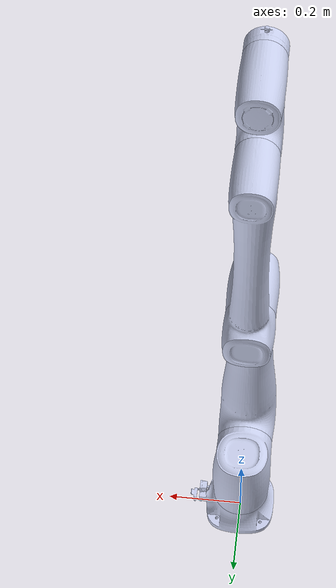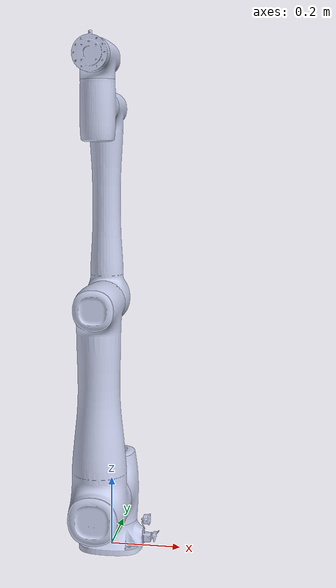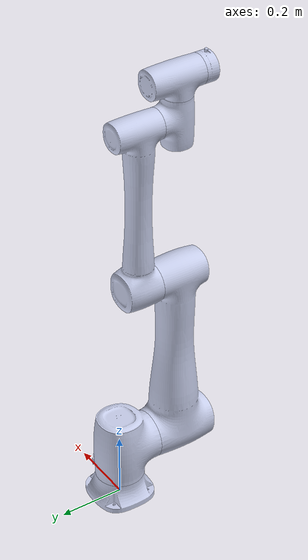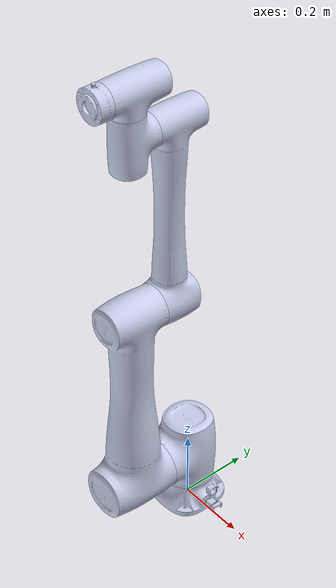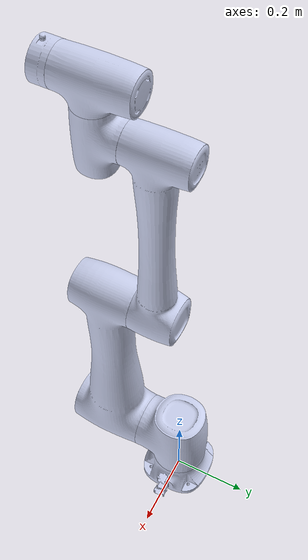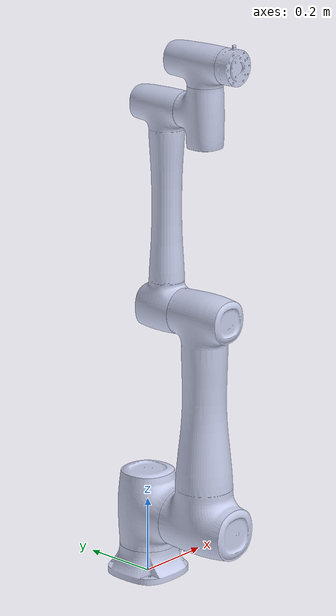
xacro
<?xml version="1.0"?>
<robot xmlns:xacro="http://www.ros.org/wiki/xacro" name="cr12_robot">
    <xacro:arg name="initial_positions_file" default="initial_positions.yaml" />

    <!-- Import cr12_robot urdf file -->
    <xacro:include filename="$(find dobot_rviz)/urdf/cr12_robot.urdf" />

    <!-- Import control_xacro -->
    <xacro:include filename="cr12_robot.ros2_control.xacro" />

    <xacro:cr12_robot_ros2_control name="FakeSystem" initial_positions_file="$(arg initial_positions_file)"/>

</robot>

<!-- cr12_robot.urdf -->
<robot
  name="cr12_robot">  <link
    name="base_link">
    <inertial>
      <origin
        xyz="-0.00174386341900778 -4.3102660432092E-06 0.0327740188891512"
        rpy="0 0 0" />
      <mass
        value="1.82652439038323" />
      <inertia
        ixx="0.00417310093970523"
        ixy="5.83590024362277E-07"
        ixz="2.52017746820122E-05"
        iyy="0.00431292894874216"
        iyz="-5.50196168357807E-07"
        izz="0.00677037749045351" />
    </inertial>
    <visual>
      <origin
        xyz="0 0 0"
        rpy="0 0 3.1415926" />
      <geometry>
        <mesh
          filename="package://dobot_rviz/meshes/cr12/base_link0.STL" />
      </geometry>
      <material
        name="">
        <color
          rgba="0.792156862745098 0.819607843137255 0.933333333333333 1" />
      </material>
    </visual>
    <collision>
      <origin
        xyz="0 0 0"
        rpy="0 0 0" />
      <geometry>
        <mesh
          filename="package://dobot_rviz/meshes/cr12/base_link0.STL" />
      </geometry>
    </collision>
  </link>  <link
    name="Link1">
    <inertial>
      <origin
        xyz="-1.37534797728969E-06 -0.010818985747522 0.00283913459985077"
        rpy="0 0 0" />
      <mass
        value="4.16489342634843" />
      <inertia
        ixx="0.0207143914764674"
        ixy="-1.71477265326949E-07"
        ixz="1.48900578943356E-07"
        iyy="0.0188243425992646"
        iyz="-9.67726083488097E-05"
        izz="0.0145747311500779" />
    </inertial>
    <visual>
      <origin
        xyz="0 0 0"
        rpy="0 0 0" />
      <geometry>
        <mesh
          filename="package://dobot_rviz/meshes/cr12/J1.STL" />
      </geometry>
      <material
        name="">
        <color
          rgba="0.792156862745098 0.819607843137255 0.933333333333333 1" />
      </material>
    </visual>
    <collision>
      <origin
        xyz="0 0 0"
        rpy="0 0 0" />
      <geometry>
        <mesh
          filename="package://dobot_rviz/meshes/cr12/J1.STL" />
      </geometry>
    </collision>
  </link>
  <joint
    name="joint1"
    type="revolute">
    <origin
      xyz="0 0 0.1765"
      rpy="0 0 0" />
    <parent
      link="base_link" />
    <child
      link="Link1" />
    <axis
      xyz="0 0 1" />
    <limit
      lower="-6.27"
      upper="6.27"
      effort="0"
      velocity="0.5236" />
  </joint>
  <link
    name="Link2">
    <inertial>
      <origin
        xyz="-0.223767091035558 1.97703924756219E-06 0.195156050522682"
        rpy="0 0 0" />
      <mass
        value="10.7566467621837" />
      <inertia
        ixx="0.0326526063620568"
        ixy="-1.51156258660237E-07"
        ixz="-0.000223174773070963"
        iyy="0.090350086723318"
        iyz="-3.82558055552048E-08"
        izz="0.0832869144009416" />
    </inertial>
    <visual>
      <origin
        xyz="0 0 0"
        rpy="0 0 0" />
      <geometry>
        <mesh
          filename="package://dobot_rviz/meshes/cr12/J2.STL" />
      </geometry>
      <material
        name="">
        <color
          rgba="0.792156862745098 0.819607843137255 0.933333333333333 1" />
      </material>
    </visual>
    <collision>
      <origin
        xyz="0 0 0"
        rpy="0 0 0" />
      <geometry>
        <mesh
          filename="package://dobot_rviz/meshes/cr12/J2.STL" />
      </geometry>
    </collision>
  </link>
  <joint
    name="joint2"
    type="revolute">
    <origin
      xyz="0 0 0"
      rpy="-1.57079631189374 1.57079631189374 3.14159265358979" />
    <parent
      link="Link1" />
    <child
      link="Link2" />
    <axis
      xyz="0 0 1" />
    <limit
      lower="-6.27"
      upper="6.27"
      effort="0"
      velocity="0.5236" />
  </joint>
  <link
    name="Link3">
    <inertial>
      <origin
        xyz="-0.24640374456178 -0.000510146477780238 -0.00440945988898146"
        rpy="0 0 0" />
      <mass
        value="4.44492218267047" />
      <inertia
        ixx="0.00647901084166721"
        ixy="-1.29118176753282E-05"
        ixz="-6.6427420024956E-05"
        iyy="0.0324286706770424"
        iyz="-3.14906273861604E-08"
        izz="0.0313147150452366" />
    </inertial>
    <visual>
      <origin
        xyz="0 0 0"
        rpy="0 0 0" />
      <geometry>
        <mesh
          filename="package://dobot_rviz/meshes/cr12/J3.STL" />
      </geometry>
      <material
        name="">
        <color
          rgba="0.792156862745098 0.819607843137255 0.933333333333333 1" />
      </material>
    </visual>
    <collision>
      <origin
        xyz="0 0 0"
        rpy="0 0 0" />
      <geometry>
        <mesh
          filename="package://dobot_rviz/meshes/cr12/J3.STL" />
      </geometry>
    </collision>
  </link>
  <joint
    name="joint3"
    type="revolute">
    <origin
      xyz="-0.557 0 0.066"
      rpy="0 0 0" />
    <parent
      link="Link2" />
    <child
      link="Link3" />
    <axis
      xyz="0 0 1" />
    <limit
      lower="-2.79"
      upper="2.79"
      effort="0"
      velocity="0.5236" />
  </joint>
  <link
    name="Link4">
    <inertial>
      <origin
        xyz="-7.01031581606983E-07 0.00798722726876111 -0.00589109083017275"
        rpy="0 0 0" />
      <mass
        value="1.16884432986471" />
      <inertia
        ixx="0.0029261465071409"
        ixy="1.22319250229627E-08"
        ixz="-8.63788919827346E-09"
        iyy="0.0015005661839772"
        iyz="-5.45038632945467E-05"
        izz="0.00273281041224196" />
    </inertial>
    <visual>
      <origin
        xyz="0 0 0"
        rpy="0 0 0" />
      <geometry>
        <mesh
          filename="package://dobot_rviz/meshes/cr12/J4.STL" />
      </geometry>
      <material
        name="">
        <color
          rgba="0.792156862745098 0.819607843137255 0.933333333333333 1" />
      </material>
    </visual>
    <collision>
      <origin
        xyz="0 0 0"
        rpy="0 0 0" />
      <geometry>
        <mesh
          filename="package://dobot_rviz/meshes/cr12/J4.STL" />
      </geometry>
    </collision>
  </link>
  <joint
    name="joint4"
    type="revolute">
    <origin
      xyz="-0.518 0 0.125"
      rpy="0 0 -1.5707963267949" />
    <parent
      link="Link3" />
    <child
      link="Link4" />
    <axis
      xyz="0 0 1" />
    <limit
      lower="-6.27"
      upper="6.27"
      effort="0"
      velocity="0.5236" />
  </joint>
  <link
    name="Link5">
    <inertial>
      <origin
        xyz="1.64458124565686E-06 -0.0145441441749841 -0.00455069032206956"
        rpy="0 0 0" />
      <mass
        value="1.22295412816384" />
      <inertia
        ixx="0.0033787624110679"
        ixy="1.10205449778373E-07"
        ixz="-6.92742655995963E-08"
        iyy="0.00149245257753668"
        iyz="8.40896480888549E-05"
        izz="0.00323280819225504" />
    </inertial>
    <visual>
      <origin
        xyz="0 0 0"
        rpy="0 0 0" />
      <geometry>
        <mesh
          filename="package://dobot_rviz/meshes/cr12/J5.STL" />
      </geometry>
      <material
        name="">
        <color
          rgba="0.792156862745098 0.819607843137255 0.933333333333333 1" />
      </material>
    </visual>
    <collision>
      <origin
        xyz="0 0 0"
        rpy="0 0 0" />
      <geometry>
        <mesh
          filename="package://dobot_rviz/meshes/cr12/J5.STL" />
      </geometry>
    </collision>
  </link>
  <joint
    name="joint5"
    type="revolute">
    <origin
      xyz="0 -0.125 0"
      rpy="1.5707963267949 0 0" />
    <parent
      link="Link4" />
    <child
      link="Link5" />
    <axis
      xyz="0 0 0.999999999998195" />
    <limit
      lower="-6.27"
      upper="6.27"
      effort="0"
      velocity="0.5236" />
  </joint>
  <link
    name="Link6">
    <inertial>
      <origin
        xyz="-9.58443207154593E-07 2.26928935573856E-05 -0.0207179881601325"
        rpy="0 0 0" />
      <mass
        value="0.207145060608753" />
      <inertia
        ixx="0.000111982690153381"
        ixy="-1.49955926525001E-12"
        ixz="-9.29699383821086E-10"
        iyy="0.000112529567571298"
        iyz="3.68689126983289E-08"
        izz="0.000208486247949099" />
    </inertial>
    <visual>
      <origin
        xyz="0 0 0"
        rpy="0 0 0" />
      <geometry>
        <mesh
          filename="package://dobot_rviz/meshes/cr12/J6.STL" />
      </geometry>
      <material
        name="">
        <color
          rgba="0.792156862745098 0.819607843137255 0.933333333333333 1" />
      </material>
    </visual>
    <collision>
      <origin
        xyz="0 0 0"
        rpy="0 0 0" />
      <geometry>
        <mesh
          filename="package://dobot_rviz/meshes/cr12/J6.STL" />
      </geometry>
    </collision>
  </link>
  <joint
    name="joint6"
    type="revolute">
    <origin
      xyz="0 0.111400161474884 0"
      rpy="-1.5707963267949 0 0" />
    <parent
      link="Link5" />
    <child
      link="Link6" />
    <axis
      xyz="0 0 1" />
    <limit
      lower="-6.27"
      upper="6.27"
      effort="0"
      velocity="0.5236" />
  </joint>
</robot>
